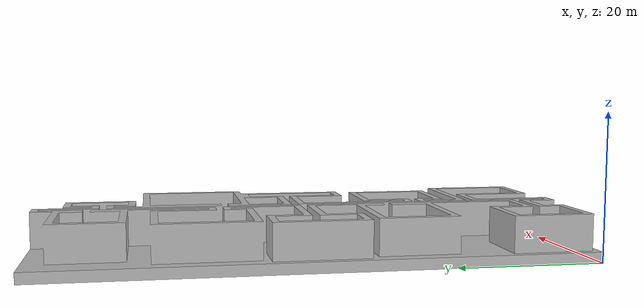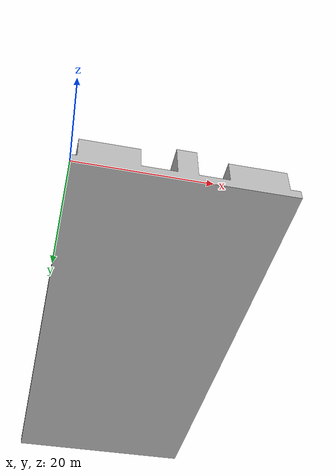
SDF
<?xml version='1.0' ?><sdf version='1.6'><model name='rooms2_2022-02-23_23:11:16.957620'><static>true</static><link name='link'><pose>0 0 0 0 0 0</pose><collision name='collision'><geometry><mesh><uri>model://rooms2_2022-02-23_23:11:16.957620/rooms2_2022-02-23_23:11:16.957620.stl</uri></mesh></geometry></collision><visual name='visual'><geometry><mesh><uri>model://rooms2_2022-02-23_23:11:16.957620/rooms2_2022-02-23_23:11:16.957620.stl</uri></mesh></geometry></visual></link></model></sdf>
